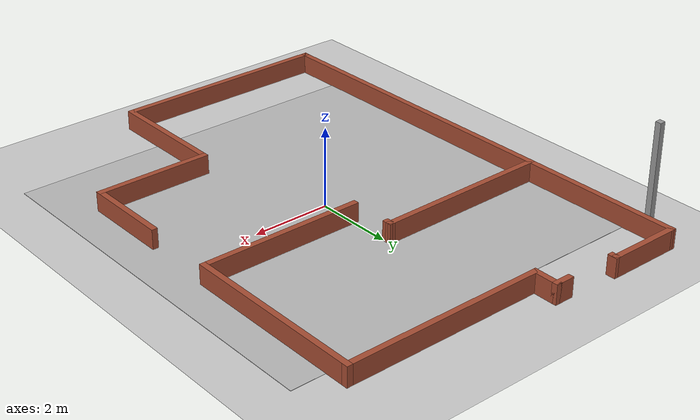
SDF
<sdf version="1.6">
 <world name="default">
  <light name="sun" type="directional">
   <pose>0 0 10 0 -0 0</pose>
   <diffuse>0.8 0.8 0.8 1</diffuse>
   <specular>0.1 0.1 0.1 1</specular>
   <attenuation>
    <range>1000</range>
    <constant>0.9</constant>
    <linear>0.01</linear>
    <quadratic>0.001</quadratic>
   </attenuation>
   <direction>-0.5 0.5 -1</direction>
  </light>
  <model name="ground_plane">
   <static>1</static>
   <link name="link">
    <collision name="collision">
     <geometry><plane><normal>0 0 1</normal><size>100 100</size></plane></geometry>
     <surface><friction><ode><mu>100</mu><mu2>50</mu2></ode></friction></surface>
    </collision>
    <visual name="visual">
     <cast_shadows>0</cast_shadows>
     <geometry><plane><normal>0 0 1</normal><size>100 100</size></plane></geometry>
     <material>
      <script><uri>file://media/materials/scripts/gazebo.material</uri><name>Gazebo/Grey</name></script>
     </material>
    </visual>
   </link>
  </model>
  <gravity>0 0 -9.8</gravity>
  <magnetic_field>6e-06 2.3e-05 -4.2e-05</magnetic_field>
  <atmosphere type="adiabatic"/>
  <physics name="default_physics" default="0" type="ode">
   <max_step_size>0.001</max_step_size>
   <real_time_factor>1</real_time_factor>
   <real_time_update_rate>1000</real_time_update_rate>
  </physics>
  <scene><ambient>0.4 0.4 0.4 1</ambient><background>0.7 0.7 0.7 1</background><shadows>1</shadows></scene>
  <spherical_coordinates>
   <surface_model>EARTH_WGS84</surface_model>
   <latitude_deg>0</latitude_deg>
   <longitude_deg>0</longitude_deg>
   <elevation>0</elevation>
   <heading_deg>0</heading_deg>
  </spherical_coordinates>
  <model name="my_ground_plane">
   <static>1</static>
   <link name="link">
    <collision name="collision">
     <geometry><plane><normal>0 0 1</normal><size>10 10</size></plane></geometry>
     <surface><friction><ode><mu>100</mu><mu2>50</mu2></ode></friction></surface>
    </collision>
    <visual name="visual">
     <cast_shadows>0</cast_shadows>
     <geometry><plane><normal>0 0 1</normal><size>10 10</size></plane></geometry>
     <material>
      <script>
       <uri>model://my_ground_plane/materials/scripts</uri>
       <uri>model://my_ground_plane/materials/textures/</uri>
       <name>MyGroundPlane/Image</name>
      </script>
     </material>
    </visual>
   </link>
   <pose>-0.002205 0.007501 0 0 -0 0</pose>
  </model>
  <model name="line_building">
   <pose>-0.539169 0.030828 0 0 -0 0</pose>
   <link name="Wall_12">
    <collision name="Wall_12_Collision">
     <geometry><box><size>4.25 0.15 0.5</size></box></geometry>
     <pose>0 0 0.25 0 -0 0</pose>
    </collision>
    <visual name="Wall_12_Visual">
     <pose>0 0 0.25 0 -0 0</pose>
     <geometry><box><size>4.25 0.15 0.5</size></box></geometry>
     <material>
      <script><uri>file://media/materials/scripts/gazebo.material</uri><name>Gazebo/Bricks</name></script>
      <ambient>1 1 1 1</ambient>
     </material>
    </visual>
    <pose>2.55417 0.922172 0 0 -0 0</pose>
   </link>
   <link name="Wall_13">
    <collision name="Wall_13_Collision">
     <geometry><box><size>4.75 0.15 0.5</size></box></geometry>
     <pose>0 0 0.25 0 -0 0</pose>
    </collision>
    <visual name="Wall_13_Visual">
     <pose>0 0 0.25 0 -0 0</pose>
     <geometry><box><size>4.75 0.15 0.5</size></box></geometry>
     <material>
      <script><uri>file://media/materials/scripts/gazebo.material</uri><name>Gazebo/Bricks</name></script>
      <ambient>1 1 1 1</ambient>
     </material>
    </visual>
    <pose>4.60417 3.22217 0 0 -0 1.5708</pose>
   </link>
   <link name="Wall_14">
    <collision name="Wall_14_Collision">
     <geometry><box><size>5.25 0.15 0.5</size></box></geometry>
     <pose>0 0 0.25 0 -0 0</pose>
    </collision>
    <visual name="Wall_14_Visual">
     <pose>0 0 0.25 0 -0 0</pose>
     <geometry><box><size>5.25 0.15 0.5</size></box></geometry>
     <material>
      <script><uri>file://media/materials/scripts/gazebo.material</uri><name>Gazebo/Bricks</name></script>
      <ambient>1 1 1 1</ambient>
     </material>
    </visual>
    <pose>2.05417 5.52217 0 0 -0 3.14159</pose>
   </link>
   <link name="Wall_15">
    <collision name="Wall_15_Collision">
     <geometry><box><size>0.75 0.15 0.5</size></box></geometry>
     <pose>0 0 0.25 0 -0 0</pose>
    </collision>
    <visual name="Wall_15_Visual">
     <pose>0 0 0.25 0 -0 0</pose>
     <geometry><box><size>0.75 0.15 0.5</size></box></geometry>
     <material>
      <script><uri>file://media/materials/scripts/gazebo.material</uri><name>Gazebo/Bricks</name></script>
      <ambient>1 1 1 1</ambient>
     </material>
    </visual>
    <pose>-0.495831 5.82217 0 0 -0 1.5708</pose>
   </link>
   <link name="Wall_16">
    <collision name="Wall_16_Collision">
     <geometry><box><size>0.5 0.15 0.5</size></box></geometry>
     <pose>0 0 0.25 0 -0 0</pose>
    </collision>
    <visual name="Wall_16_Visual">
     <pose>0 0 0.25 0 -0 0</pose>
     <geometry><box><size>0.5 0.15 0.5</size></box></geometry>
     <material>
      <script><uri>file://media/materials/scripts/gazebo.material</uri><name>Gazebo/Bricks</name></script>
      <ambient>1 1 1 1</ambient>
     </material>
    </visual>
    <pose>-0.670831 6.12217 0 0 -0 3.14159</pose>
   </link>
   <link name="Wall_2">
    <collision name="Wall_2_Collision">
     <geometry><box><size>5.75 0.15 0.5</size></box></geometry>
     <pose>0 0 0.25 0 -0 0</pose>
    </collision>
    <visual name="Wall_2_Visual">
     <pose>0 0 0.25 0 -0 0</pose>
     <geometry><box><size>5.75 0.15 0.5</size></box></geometry>
     <material>
      <script><uri>file://media/materials/scripts/gazebo.material</uri><name>Gazebo/Bricks</name></script>
      <ambient>1 1 1 1</ambient>
     </material>
    </visual>
    <pose>-1.07083 -6.23083 0 0 -0 3.14159</pose>
   </link>
   <link name="Wall_20">
    <collision name="Wall_20_Collision">
     <geometry><box><size>0.15 0.15 2.5</size></box></geometry>
     <pose>0 0 1.25 0 -0 0</pose>
    </collision>
    <visual name="Wall_20_Visual">
     <pose>0 0 1.25 0 -0 0</pose>
     <geometry><box><size>0.15 0.15 2.5</size></box></geometry>
     <material>
      <script><uri>file://media/materials/scripts/gazebo.material</uri><name>Gazebo/Grey</name></script>
      <ambient>1 1 1 1</ambient>
     </material>
    </visual>
    <pose>-4.60417 5.18254 0 0 -0 0</pose>
   </link>
   <link name="Wall_21">
    <collision name="Wall_21_Collision">
     <geometry><box><size>0.15 0.15 2.5</size></box></geometry>
     <pose>0 0 1.25 0 -0 0</pose>
    </collision>
    <visual name="Wall_21_Visual">
     <pose>0 0 1.25 0 -0 0</pose>
     <geometry><box><size>0.15 0.15 2.5</size></box></geometry>
     <material>
      <script><uri>file://media/materials/scripts/gazebo.material</uri><name>Gazebo/Grey</name></script>
      <ambient>1 1 1 1</ambient>
     </material>
    </visual>
    <pose>-4.60417 5.18254 0 0 -0 0</pose>
   </link>
   <link name="Wall_23">
    <collision name="Wall_23_Collision">
     <geometry><box><size>1.9425 0.15 0.5</size></box></geometry>
     <pose>0 0 0.25 0 -0 0</pose>
    </collision>
    <visual name="Wall_23_Visual">
     <pose>0 0 0.25 0 -0 0</pose>
     <geometry><box><size>1.9425 0.15 0.5</size></box></geometry>
     <material>
      <script><uri>file://media/materials/scripts/gazebo.material</uri><name>Gazebo/Bricks</name></script>
      <ambient>1 1 1 1</ambient>
     </material>
    </visual>
    <pose>-3.11258 6.22917 0 0 0 -0.002232</pose>
   </link>
   <link name="Wall_24">
    <collision name="Wall_24_Collision">
     <geometry><box><size>0.25 0.15 0.5</size></box></geometry>
     <pose>0 0 0.25 0 -0 0</pose>
    </collision>
    <visual name="Wall_24_Visual">
     <pose>0 0 0.25 0 -0 0</pose>
     <geometry><box><size>0.25 0.15 0.5</size></box></geometry>
     <material>
      <script><uri>file://media/materials/scripts/gazebo.material</uri><name>Gazebo/Bricks</name></script>
      <ambient>1 1 1 1</ambient>
     </material>
    </visual>
    <pose>-2.20483 6.17717 0 0 0 -1.5708</pose>
   </link>
   <link name="Wall_26">
    <collision name="Wall_26_Collision">
     <geometry><box><size>4.29711 0.15 0.5</size></box></geometry>
     <pose>0 0 0.25 0 -0 0</pose>
    </collision>
    <visual name="Wall_26_Visual">
     <pose>0 0 0.25 0 -0 0</pose>
     <geometry><box><size>4.29711 0.15 0.5</size></box></geometry>
     <material>
      <script><uri>file://media/materials/scripts/gazebo.material</uri><name>Gazebo/Bricks</name></script>
      <ambient>1 1 1 1</ambient>
     </material>
    </visual>
    <pose>-3.9923 4.15768 0 0 -0 1.57877</pose>
   </link>
   <link name="Wall_3">
    <collision name="Wall_3_Collision">
     <geometry><box><size>8.46568 0.15 0.5</size></box></geometry>
     <pose>0 0 0.25 0 -0 0</pose>
    </collision>
    <visual name="Wall_3_Visual">
     <pose>0 0 0.25 0 -0 0</pose>
     <geometry><box><size>8.46568 0.15 0.5</size></box></geometry>
     <material>
      <script><uri>file://media/materials/scripts/gazebo.material</uri><name>Gazebo/Bricks</name></script>
      <ambient>1 1 1 1</ambient>
     </material>
    </visual>
    <pose>-3.9233 -2.07332 0 0 -0 1.58342</pose>
   </link>
   <link name="Wall_4">
    <collision name="Wall_4_Collision">
     <geometry><box><size>4.60508 0.15 0.5</size></box></geometry>
     <pose>0 0 0.25 0 -0 0</pose>
    </collision>
    <visual name="Wall_4_Visual">
     <pose>0 0 0.25 0 -0 0</pose>
     <geometry><box><size>4.60508 0.15 0.5</size></box></geometry>
     <material>
      <script><uri>file://media/materials/scripts/gazebo.material</uri><name>Gazebo/Bricks</name></script>
      <ambient>1 1 1 1</ambient>
     </material>
    </visual>
    <pose>-1.7483 2.10168 0 0 -0 0.007852</pose>
   </link>
   <link name="Wall_5">
    <collision name="Wall_5_Collision">
     <geometry><box><size>0.25 0.15 0.5</size></box></geometry>
     <pose>0 0 0.25 0 -0 0</pose>
    </collision>
    <visual name="Wall_5_Visual">
     <pose>0 0 0.25 0 -0 0</pose>
     <geometry><box><size>0.25 0.15 0.5</size></box></geometry>
     <material>
      <script><uri>file://media/materials/scripts/gazebo.material</uri><name>Gazebo/Bricks</name></script>
      <ambient>1 1 1 1</ambient>
     </material>
    </visual>
    <pose>0.479169 2.06917 0 0 0 -1.5708</pose>
   </link>
   <link name="Wall_7">
    <collision name="Wall_7_Collision">
     <geometry><box><size>3.25 0.15 0.5</size></box></geometry>
     <pose>0 0 0.25 0 -0 0</pose>
    </collision>
    <visual name="Wall_7_Visual">
     <pose>0 0 0.25 0 -0 0</pose>
     <geometry><box><size>3.25 0.15 0.5</size></box></geometry>
     <material>
      <script><uri>file://media/materials/scripts/gazebo.material</uri><name>Gazebo/Bricks</name></script>
      <ambient>1 1 1 1</ambient>
     </material>
    </visual>
    <pose>1.72917 -4.68083 0 0 -0 1.5708</pose>
   </link>
   <link name="Wall_8">
    <collision name="Wall_8_Collision">
     <geometry><box><size>3 0.15 0.5</size></box></geometry>
     <pose>0 0 0.25 0 -0 0</pose>
    </collision>
    <visual name="Wall_8_Visual">
     <pose>0 0 0.25 0 -0 0</pose>
     <geometry><box><size>3 0.15 0.5</size></box></geometry>
     <material>
      <script><uri>file://media/materials/scripts/gazebo.material</uri><name>Gazebo/Bricks</name></script>
      <ambient>1 1 1 1</ambient>
     </material>
    </visual>
    <pose>3.15417 -3.13083 0 0 -0 0</pose>
   </link>
   <link name="Wall_9">
    <collision name="Wall_9_Collision">
     <geometry><box><size>2.25 0.15 0.5</size></box></geometry>
     <pose>0 0 0.25 0 -0 0</pose>
    </collision>
    <visual name="Wall_9_Visual">
     <pose>0 0 0.25 0 -0 0</pose>
     <geometry><box><size>2.25 0.15 0.5</size></box></geometry>
     <material>
      <script><uri>file://media/materials/scripts/gazebo.material</uri><name>Gazebo/Bricks</name></script>
      <ambient>1 1 1 1</ambient>
     </material>
    </visual>
    <pose>4.57917 -2.08083 0 0 -0 1.5708</pose>
   </link>
   <static>1</static>
  </model>
 </world>
</sdf>
